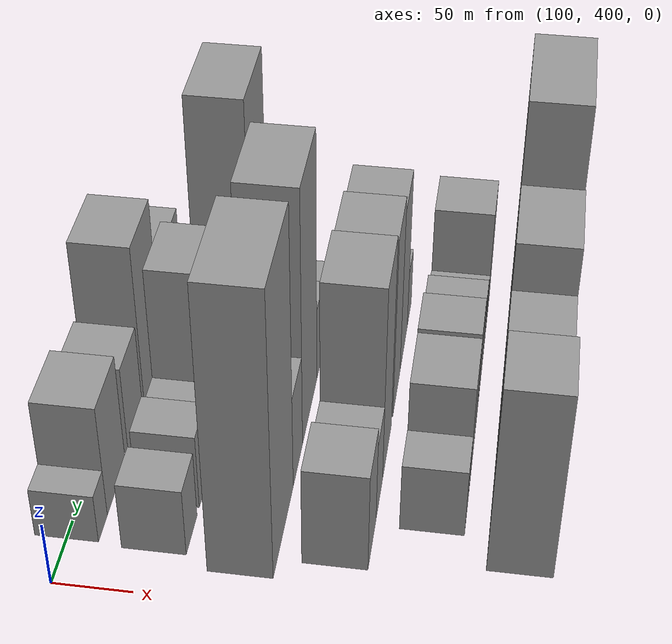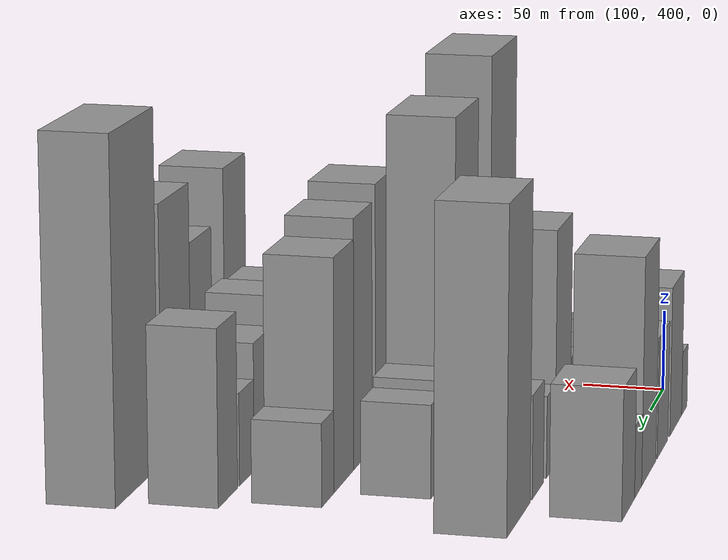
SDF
<sdf version="1.6">
 <world name="default">
  <model name="building_38">
   <static>1</static>
   <pose>100.0000 446.6524 0 0.000000 0.000000 0.000000</pose>
   <link name="link">
    <pose>0 0 19.50 0 0 0</pose>
    <collision name="collision"><geometry><box><size>40.0000 22.1706 39.0000</size></box></geometry></collision>
    <visual name="visual">
     <cast_shadows>0</cast_shadows>
     <geometry><box><size>40.0000 22.1706 39.0000</size></box></geometry>
     <material>
      <script>
       <uri>model://grey_wall/materials/scripts</uri>
       <uri>model://grey_wall/materials/textures</uri>
       <name>vrc/grey_wall</name>
      </script>
     </material>
    </visual>
   </link>
  </model>
  <model name="building_39">
   <static>1</static>
   <pose>100.0000 481.2017 0 0.000000 0.000000 0.000000</pose>
   <link name="link">
    <pose>0 0 45.00 0 0 0</pose>
    <collision name="collision"><geometry><box><size>40.0000 46.9281 90.0000</size></box></geometry></collision>
    <visual name="visual">
     <cast_shadows>0</cast_shadows>
     <geometry><box><size>40.0000 46.9281 90.0000</size></box></geometry>
     <material>
      <script>
       <uri>model://grey_wall/materials/scripts</uri>
       <uri>model://grey_wall/materials/textures</uri>
       <name>vrc/grey_wall</name>
      </script>
     </material>
    </visual>
   </link>
  </model>
  <model name="building_40">
   <static>1</static>
   <pose>100.0000 533.0369 0 0.000000 0.000000 0.000000</pose>
   <link name="link">
    <pose>0 0 36.00 0 0 0</pose>
    <collision name="collision"><geometry><box><size>40.0000 40.7424 72.0000</size></box></geometry></collision>
    <visual name="visual">
     <cast_shadows>0</cast_shadows>
     <geometry><box><size>40.0000 40.7424 72.0000</size></box></geometry>
     <material>
      <script>
       <uri>model://grey_wall/materials/scripts</uri>
       <uri>model://grey_wall/materials/textures</uri>
       <name>vrc/grey_wall</name>
      </script>
     </material>
    </visual>
   </link>
  </model>
  <model name="building_41">
   <static>1</static>
   <pose>100.0000 584.1585 0 0.000000 0.000000 0.000000</pose>
   <link name="link">
    <pose>0 0 66.00 0 0 0</pose>
    <collision name="collision"><geometry><box><size>40.0000 51.5008 132.0000</size></box></geometry></collision>
    <visual name="visual">
     <cast_shadows>0</cast_shadows>
     <geometry><box><size>40.0000 51.5008 132.0000</size></box></geometry>
     <material>
      <script>
       <uri>model://grey_wall/materials/scripts</uri>
       <uri>model://grey_wall/materials/textures</uri>
       <name>vrc/grey_wall</name>
      </script>
     </material>
    </visual>
   </link>
  </model>
  <model name="building_42">
   <static>1</static>
   <pose>100.0000 622.2967 0 0.000000 0.000000 0.000000</pose>
   <link name="link">
    <pose>0 0 21.00 0 0 0</pose>
    <collision name="collision"><geometry><box><size>40.0000 24.7755 42.0000</size></box></geometry></collision>
    <visual name="visual">
     <cast_shadows>0</cast_shadows>
     <geometry><box><size>40.0000 24.7755 42.0000</size></box></geometry>
     <material>
      <script>
       <uri>model://grey_wall/materials/scripts</uri>
       <uri>model://grey_wall/materials/textures</uri>
       <name>vrc/grey_wall</name>
      </script>
     </material>
    </visual>
   </link>
  </model>
  <model name="building_43">
   <static>1</static>
   <pose>100.0000 656.5009 0 0.000000 0.000000 0.000000</pose>
   <link name="link">
    <pose>0 0 37.50 0 0 0</pose>
    <collision name="collision"><geometry><box><size>40.0000 43.6329 75.0000</size></box></geometry></collision>
    <visual name="visual">
     <cast_shadows>0</cast_shadows>
     <geometry><box><size>40.0000 43.6329 75.0000</size></box></geometry>
     <material>
      <script>
       <uri>model://grey_wall/materials/scripts</uri>
       <uri>model://grey_wall/materials/textures</uri>
       <name>vrc/grey_wall</name>
      </script>
     </material>
    </visual>
   </link>
  </model>
  <model name="building_81">
   <static>1</static>
   <pose>155.0000 449.2128 0 0.000000 0.000000 0.000000</pose>
   <link name="link">
    <pose>0 0 27.00 0 0 0</pose>
    <collision name="collision"><geometry><box><size>40.0000 32.3121 54.0000</size></box></geometry></collision>
    <visual name="visual">
     <cast_shadows>0</cast_shadows>
     <geometry><box><size>40.0000 32.3121 54.0000</size></box></geometry>
     <material>
      <script>
       <uri>model://grey_wall/materials/scripts</uri>
       <uri>model://grey_wall/materials/textures</uri>
       <name>vrc/grey_wall</name>
      </script>
     </material>
    </visual>
   </link>
  </model>
  <model name="building_82">
   <static>1</static>
   <pose>155.0000 488.0357 0 0.000000 0.000000 0.000000</pose>
   <link name="link">
    <pose>0 0 30.00 0 0 0</pose>
    <collision name="collision"><geometry><box><size>40.0000 31.3338 60.0000</size></box></geometry></collision>
    <visual name="visual">
     <cast_shadows>0</cast_shadows>
     <geometry><box><size>40.0000 31.3338 60.0000</size></box></geometry>
     <material>
      <script>
       <uri>model://grey_wall/materials/scripts</uri>
       <uri>model://grey_wall/materials/textures</uri>
       <name>vrc/grey_wall</name>
      </script>
     </material>
    </visual>
   </link>
  </model>
  <model name="building_83">
   <static>1</static>
   <pose>155.0000 517.4291 0 0.000000 0.000000 0.000000</pose>
   <link name="link">
    <pose>0 0 25.50 0 0 0</pose>
    <collision name="collision"><geometry><box><size>40.0000 27.4531 51.0000</size></box></geometry></collision>
    <visual name="visual">
     <cast_shadows>0</cast_shadows>
     <geometry><box><size>40.0000 27.4531 51.0000</size></box></geometry>
     <material>
      <script>
       <uri>model://grey_wall/materials/scripts</uri>
       <uri>model://grey_wall/materials/textures</uri>
       <name>vrc/grey_wall</name>
      </script>
     </material>
    </visual>
   </link>
  </model>
  <model name="building_84">
   <static>1</static>
   <pose>155.0000 555.5764 0 0.000000 0.000000 0.000000</pose>
   <link name="link">
    <pose>0 0 69.00 0 0 0</pose>
    <collision name="collision"><geometry><box><size>40.0000 48.8416 138.0000</size></box></geometry></collision>
    <visual name="visual">
     <cast_shadows>0</cast_shadows>
     <geometry><box><size>40.0000 48.8416 138.0000</size></box></geometry>
     <material>
      <script>
       <uri>model://grey_wall/materials/scripts</uri>
       <uri>model://grey_wall/materials/textures</uri>
       <name>vrc/grey_wall</name>
      </script>
     </material>
    </visual>
   </link>
  </model>
  <model name="building_85">
   <static>1</static>
   <pose>155.0000 593.3761 0 0.000000 0.000000 0.000000</pose>
   <link name="link">
    <pose>0 0 24.00 0 0 0</pose>
    <collision name="collision"><geometry><box><size>40.0000 26.7578 48.0000</size></box></geometry></collision>
    <visual name="visual">
     <cast_shadows>0</cast_shadows>
     <geometry><box><size>40.0000 26.7578 48.0000</size></box></geometry>
     <material>
      <script>
       <uri>model://grey_wall/materials/scripts</uri>
       <uri>model://grey_wall/materials/textures</uri>
       <name>vrc/grey_wall</name>
      </script>
     </material>
    </visual>
   </link>
  </model>
  <model name="building_86">
   <static>1</static>
   <pose>155.0000 632.6565 0 0.000000 0.000000 0.000000</pose>
   <link name="link">
    <pose>0 0 30.00 0 0 0</pose>
    <collision name="collision"><geometry><box><size>40.0000 33.8031 60.0000</size></box></geometry></collision>
    <visual name="visual">
     <cast_shadows>0</cast_shadows>
     <geometry><box><size>40.0000 33.8031 60.0000</size></box></geometry>
     <material>
      <script>
       <uri>model://grey_wall/materials/scripts</uri>
       <uri>model://grey_wall/materials/textures</uri>
       <name>vrc/grey_wall</name>
      </script>
     </material>
    </visual>
   </link>
  </model>
  <model name="building_87">
   <static>1</static>
   <pose>155.0000 688.7468 0 0.000000 0.000000 0.000000</pose>
   <link name="link">
    <pose>0 0 91.50 0 0 0</pose>
    <collision name="collision"><geometry><box><size>40.0000 66.3775 183.0000</size></box></geometry></collision>
    <visual name="visual">
     <cast_shadows>0</cast_shadows>
     <geometry><box><size>40.0000 66.3775 183.0000</size></box></geometry>
     <material>
      <script>
       <uri>model://grey_wall/materials/scripts</uri>
       <uri>model://grey_wall/materials/textures</uri>
       <name>vrc/grey_wall</name>
      </script>
     </material>
    </visual>
   </link>
  </model>
  <model name="building_123">
   <static>1</static>
   <pose>210.0000 460.2543 0 0.000000 0.000000 0.000000</pose>
   <link name="link">
    <pose>0 0 111.00 0 0 0</pose>
    <collision name="collision"><geometry><box><size>40.0000 75.8884 222.0000</size></box></geometry></collision>
    <visual name="visual">
     <cast_shadows>0</cast_shadows>
     <geometry><box><size>40.0000 75.8884 222.0000</size></box></geometry>
     <material>
      <script>
       <uri>model://grey_wall/materials/scripts</uri>
       <uri>model://grey_wall/materials/textures</uri>
       <name>vrc/grey_wall</name>
      </script>
     </material>
    </visual>
   </link>
  </model>
  <model name="building_124">
   <static>1</static>
   <pose>210.0000 517.3204 0 0.000000 0.000000 0.000000</pose>
   <link name="link">
    <pose>0 0 37.50 0 0 0</pose>
    <collision name="collision"><geometry><box><size>40.0000 38.2439 75.0000</size></box></geometry></collision>
    <visual name="visual">
     <cast_shadows>0</cast_shadows>
     <geometry><box><size>40.0000 38.2439 75.0000</size></box></geometry>
     <material>
      <script>
       <uri>model://grey_wall/materials/scripts</uri>
       <uri>model://grey_wall/materials/textures</uri>
       <name>vrc/grey_wall</name>
      </script>
     </material>
    </visual>
   </link>
  </model>
  <model name="building_125">
   <static>1</static>
   <pose>210.0000 568.0147 0 0.000000 0.000000 0.000000</pose>
   <link name="link">
    <pose>0 0 102.00 0 0 0</pose>
    <collision name="collision"><geometry><box><size>40.0000 63.1448 204.0000</size></box></geometry></collision>
    <visual name="visual">
     <cast_shadows>0</cast_shadows>
     <geometry><box><size>40.0000 63.1448 204.0000</size></box></geometry>
     <material>
      <script>
       <uri>model://grey_wall/materials/scripts</uri>
       <uri>model://grey_wall/materials/textures</uri>
       <name>vrc/grey_wall</name>
      </script>
     </material>
    </visual>
   </link>
  </model>
  <model name="building_126">
   <static>1</static>
   <pose>210.0000 615.4286 0 0.000000 0.000000 0.000000</pose>
   <link name="link">
    <pose>0 0 30.00 0 0 0</pose>
    <collision name="collision"><geometry><box><size>40.0000 31.6830 60.0000</size></box></geometry></collision>
    <visual name="visual">
     <cast_shadows>0</cast_shadows>
     <geometry><box><size>40.0000 31.6830 60.0000</size></box></geometry>
     <material>
      <script>
       <uri>model://grey_wall/materials/scripts</uri>
       <uri>model://grey_wall/materials/textures</uri>
       <name>vrc/grey_wall</name>
      </script>
     </material>
    </visual>
   </link>
  </model>
  <model name="building_127">
   <static>1</static>
   <pose>210.0000 646.1215 0 0.000000 0.000000 0.000000</pose>
   <link name="link">
    <pose>0 0 27.00 0 0 0</pose>
    <collision name="collision"><geometry><box><size>40.0000 29.7028 54.0000</size></box></geometry></collision>
    <visual name="visual">
     <cast_shadows>0</cast_shadows>
     <geometry><box><size>40.0000 29.7028 54.0000</size></box></geometry>
     <material>
      <script>
       <uri>model://grey_wall/materials/scripts</uri>
       <uri>model://grey_wall/materials/textures</uri>
       <name>vrc/grey_wall</name>
      </script>
     </material>
    </visual>
   </link>
  </model>
  <model name="building_171">
   <static>1</static>
   <pose>265.0000 457.3463 0 0.000000 0.000000 0.000000</pose>
   <link name="link">
    <pose>0 0 39.00 0 0 0</pose>
    <collision name="collision"><geometry><box><size>40.0000 40.9606 78.0000</size></box></geometry></collision>
    <visual name="visual">
     <cast_shadows>0</cast_shadows>
     <geometry><box><size>40.0000 40.9606 78.0000</size></box></geometry>
     <material>
      <script>
       <uri>model://grey_wall/materials/scripts</uri>
       <uri>model://grey_wall/materials/textures</uri>
       <name>vrc/grey_wall</name>
      </script>
     </material>
    </visual>
   </link>
  </model>
  <model name="building_172">
   <static>1</static>
   <pose>265.0000 495.0874 0 0.000000 0.000000 0.000000</pose>
   <link name="link">
    <pose>0 0 31.50 0 0 0</pose>
    <collision name="collision"><geometry><box><size>40.0000 34.5215 63.0000</size></box></geometry></collision>
    <visual name="visual">
     <cast_shadows>0</cast_shadows>
     <geometry><box><size>40.0000 34.5215 63.0000</size></box></geometry>
     <material>
      <script>
       <uri>model://grey_wall/materials/scripts</uri>
       <uri>model://grey_wall/materials/textures</uri>
       <name>vrc/grey_wall</name>
      </script>
     </material>
    </visual>
   </link>
  </model>
  <model name="building_173">
   <static>1</static>
   <pose>265.0000 537.6382 0 0.000000 0.000000 0.000000</pose>
   <link name="link">
    <pose>0 0 78.00 0 0 0</pose>
    <collision name="collision"><geometry><box><size>40.0000 50.5802 156.0000</size></box></geometry></collision>
    <visual name="visual">
     <cast_shadows>0</cast_shadows>
     <geometry><box><size>40.0000 50.5802 156.0000</size></box></geometry>
     <material>
      <script>
       <uri>model://grey_wall/materials/scripts</uri>
       <uri>model://grey_wall/materials/textures</uri>
       <name>vrc/grey_wall</name>
      </script>
     </material>
    </visual>
   </link>
  </model>
  <model name="building_174">
   <static>1</static>
   <pose>265.0000 593.4409 0 0.000000 0.000000 0.000000</pose>
   <link name="link">
    <pose>0 0 73.50 0 0 0</pose>
    <collision name="collision"><geometry><box><size>40.0000 45.0252 147.0000</size></box></geometry></collision>
    <visual name="visual">
     <cast_shadows>0</cast_shadows>
     <geometry><box><size>40.0000 45.0252 147.0000</size></box></geometry>
     <material>
      <script>
       <uri>model://grey_wall/materials/scripts</uri>
       <uri>model://grey_wall/materials/textures</uri>
       <name>vrc/grey_wall</name>
      </script>
     </material>
    </visual>
   </link>
  </model>
  <model name="building_175">
   <static>1</static>
   <pose>265.0000 639.3680 0 0.000000 0.000000 0.000000</pose>
   <link name="link">
    <pose>0 0 67.50 0 0 0</pose>
    <collision name="collision"><geometry><box><size>40.0000 46.8291 135.0000</size></box></geometry></collision>
    <visual name="visual">
     <cast_shadows>0</cast_shadows>
     <geometry><box><size>40.0000 46.8291 135.0000</size></box></geometry>
     <material>
      <script>
       <uri>model://grey_wall/materials/scripts</uri>
       <uri>model://grey_wall/materials/textures</uri>
       <name>vrc/grey_wall</name>
      </script>
     </material>
    </visual>
   </link>
  </model>
  <model name="building_176">
   <static>1</static>
   <pose>265.0000 676.6417 0 0.000000 0.000000 0.000000</pose>
   <link name="link">
    <pose>0 0 24.00 0 0 0</pose>
    <collision name="collision"><geometry><box><size>40.0000 27.7183 48.0000</size></box></geometry></collision>
    <visual name="visual">
     <cast_shadows>0</cast_shadows>
     <geometry><box><size>40.0000 27.7183 48.0000</size></box></geometry>
     <material>
      <script>
       <uri>model://grey_wall/materials/scripts</uri>
       <uri>model://grey_wall/materials/textures</uri>
       <name>vrc/grey_wall</name>
      </script>
     </material>
    </visual>
   </link>
  </model>
  <model name="building_224">
   <static>1</static>
   <pose>320.0000 488.2374 0 0.000000 0.000000 0.000000</pose>
   <link name="link">
    <pose>0 0 27.00 0 0 0</pose>
    <collision name="collision"><geometry><box><size>40.0000 31.2098 54.0000</size></box></geometry></collision>
    <visual name="visual">
     <cast_shadows>0</cast_shadows>
     <geometry><box><size>40.0000 31.2098 54.0000</size></box></geometry>
     <material>
      <script>
       <uri>model://grey_wall/materials/scripts</uri>
       <uri>model://grey_wall/materials/textures</uri>
       <name>vrc/grey_wall</name>
      </script>
     </material>
    </visual>
   </link>
  </model>
  <model name="building_225">
   <static>1</static>
   <pose>320.0000 530.1379 0 0.000000 0.000000 0.000000</pose>
   <link name="link">
    <pose>0 0 45.00 0 0 0</pose>
    <collision name="collision"><geometry><box><size>40.0000 46.5912 90.0000</size></box></geometry></collision>
    <visual name="visual">
     <cast_shadows>0</cast_shadows>
     <geometry><box><size>40.0000 46.5912 90.0000</size></box></geometry>
     <material>
      <script>
       <uri>model://grey_wall/materials/scripts</uri>
       <uri>model://grey_wall/materials/textures</uri>
       <name>vrc/grey_wall</name>
      </script>
     </material>
    </visual>
   </link>
  </model>
  <model name="building_226">
   <static>1</static>
   <pose>320.0000 571.2493 0 0.000000 0.000000 0.000000</pose>
   <link name="link">
    <pose>0 0 46.50 0 0 0</pose>
    <collision name="collision"><geometry><box><size>40.0000 35.6316 93.0000</size></box></geometry></collision>
    <visual name="visual">
     <cast_shadows>0</cast_shadows>
     <geometry><box><size>40.0000 35.6316 93.0000</size></box></geometry>
     <material>
      <script>
       <uri>model://grey_wall/materials/scripts</uri>
       <uri>model://grey_wall/materials/textures</uri>
       <name>vrc/grey_wall</name>
      </script>
     </material>
    </visual>
   </link>
  </model>
  <model name="building_227">
   <static>1</static>
   <pose>320.0000 609.5765 0 0.000000 0.000000 0.000000</pose>
   <link name="link">
    <pose>0 0 37.50 0 0 0</pose>
    <collision name="collision"><geometry><box><size>40.0000 41.0227 75.0000</size></box></geometry></collision>
    <visual name="visual">
     <cast_shadows>0</cast_shadows>
     <geometry><box><size>40.0000 41.0227 75.0000</size></box></geometry>
     <material>
      <script>
       <uri>model://grey_wall/materials/scripts</uri>
       <uri>model://grey_wall/materials/textures</uri>
       <name>vrc/grey_wall</name>
      </script>
     </material>
    </visual>
   </link>
  </model>
  <model name="building_228">
   <static>1</static>
   <pose>320.0000 645.7559 0 0.000000 0.000000 0.000000</pose>
   <link name="link">
    <pose>0 0 27.00 0 0 0</pose>
    <collision name="collision"><geometry><box><size>40.0000 31.3360 54.0000</size></box></geometry></collision>
    <visual name="visual">
     <cast_shadows>0</cast_shadows>
     <geometry><box><size>40.0000 31.3360 54.0000</size></box></geometry>
     <material>
      <script>
       <uri>model://grey_wall/materials/scripts</uri>
       <uri>model://grey_wall/materials/textures</uri>
       <name>vrc/grey_wall</name>
      </script>
     </material>
    </visual>
   </link>
  </model>
  <model name="building_229">
   <static>1</static>
   <pose>320.0000 685.2574 0 0.000000 0.000000 0.000000</pose>
   <link name="link">
    <pose>0 0 51.00 0 0 0</pose>
    <collision name="collision"><geometry><box><size>40.0000 39.6670 102.0000</size></box></geometry></collision>
    <visual name="visual">
     <cast_shadows>0</cast_shadows>
     <geometry><box><size>40.0000 39.6670 102.0000</size></box></geometry>
     <material>
      <script>
       <uri>model://grey_wall/materials/scripts</uri>
       <uri>model://grey_wall/materials/textures</uri>
       <name>vrc/grey_wall</name>
      </script>
     </material>
    </visual>
   </link>
  </model>
  <model name="building_272">
   <static>1</static>
   <pose>375.0000 471.4965 0 0.000000 0.000000 0.000000</pose>
   <link name="link">
    <pose>0 0 73.50 0 0 0</pose>
    <collision name="collision"><geometry><box><size>40.0000 49.6802 147.0000</size></box></geometry></collision>
    <visual name="visual">
     <cast_shadows>0</cast_shadows>
     <geometry><box><size>40.0000 49.6802 147.0000</size></box></geometry>
     <material>
      <script>
       <uri>model://grey_wall/materials/scripts</uri>
       <uri>model://grey_wall/materials/textures</uri>
       <name>vrc/grey_wall</name>
      </script>
     </material>
    </visual>
   </link>
  </model>
  <model name="building_273">
   <static>1</static>
   <pose>375.0000 507.0018 0 0.000000 0.000000 0.000000</pose>
   <link name="link">
    <pose>0 0 21.00 0 0 0</pose>
    <collision name="collision"><geometry><box><size>40.0000 21.3304 42.0000</size></box></geometry></collision>
    <visual name="visual">
     <cast_shadows>0</cast_shadows>
     <geometry><box><size>40.0000 21.3304 42.0000</size></box></geometry>
     <material>
      <script>
       <uri>model://grey_wall/materials/scripts</uri>
       <uri>model://grey_wall/materials/textures</uri>
       <name>vrc/grey_wall</name>
      </script>
     </material>
    </visual>
   </link>
  </model>
  <model name="building_274">
   <static>1</static>
   <pose>375.0000 546.6549 0 0.000000 0.000000 0.000000</pose>
   <link name="link">
    <pose>0 0 58.50 0 0 0</pose>
    <collision name="collision"><geometry><box><size>40.0000 45.9758 117.0000</size></box></geometry></collision>
    <visual name="visual">
     <cast_shadows>0</cast_shadows>
     <geometry><box><size>40.0000 45.9758 117.0000</size></box></geometry>
     <material>
      <script>
       <uri>model://grey_wall/materials/scripts</uri>
       <uri>model://grey_wall/materials/textures</uri>
       <name>vrc/grey_wall</name>
      </script>
     </material>
    </visual>
   </link>
  </model>
  <model name="building_275">
   <static>1</static>
   <pose>375.0000 599.9118 0 0.000000 0.000000 0.000000</pose>
   <link name="link">
    <pose>0 0 76.50 0 0 0</pose>
    <collision name="collision"><geometry><box><size>40.0000 60.5379 153.0000</size></box></geometry></collision>
    <visual name="visual">
     <cast_shadows>0</cast_shadows>
     <geometry><box><size>40.0000 60.5379 153.0000</size></box></geometry>
     <material>
      <script>
       <uri>model://grey_wall/materials/scripts</uri>
       <uri>model://grey_wall/materials/textures</uri>
       <name>vrc/grey_wall</name>
      </script>
     </material>
    </visual>
   </link>
  </model>
  <model name="building_276">
   <static>1</static>
   <pose>375.0000 677.8092 0 0.000000 0.000000 0.000000</pose>
   <link name="link">
    <pose>0 0 105.00 0 0 0</pose>
    <collision name="collision"><geometry><box><size>40.0000 81.2569 210.0000</size></box></geometry></collision>
    <visual name="visual">
     <cast_shadows>0</cast_shadows>
     <geometry><box><size>40.0000 81.2569 210.0000</size></box></geometry>
     <material>
      <script>
       <uri>model://grey_wall/materials/scripts</uri>
       <uri>model://grey_wall/materials/textures</uri>
       <name>vrc/grey_wall</name>
      </script>
     </material>
    </visual>
   </link>
  </model>
 </world>
</sdf>
